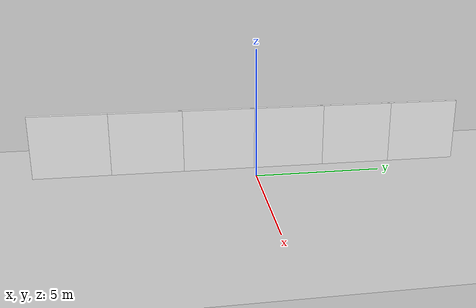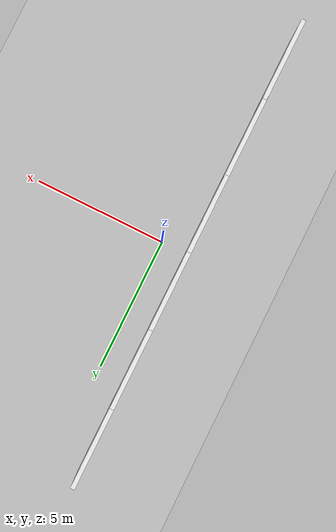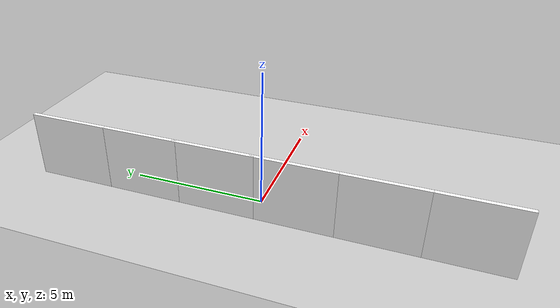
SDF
<sdf version="1.6">
 <world name="default">
  <light name="sun" type="directional">
   <pose>0 0 10 0 -0 0</pose>
   <diffuse>0.8 0.8 0.8 1</diffuse>
   <specular>0.2 0.2 0.2 1</specular>
   <attenuation>
    <range>1000</range>
    <constant>0.9</constant>
    <linear>0.01</linear>
    <quadratic>0.001</quadratic>
   </attenuation>
   <direction>-0.5 0.1 -0.9</direction>
  </light>
  <model name="ground_plane">
   <static>1</static>
   <link name="link">
    <collision name="collision">
     <geometry><plane><normal>0 0 1</normal><size>100 100</size></plane></geometry>
     <surface>
      <contact><collide_bitmask>65535</collide_bitmask></contact>
      <friction><ode><mu>100</mu><mu2>50</mu2></ode></friction>
     </surface>
    </collision>
    <visual name="visual">
     <cast_shadows>0</cast_shadows>
     <geometry><plane><normal>0 0 1</normal><size>100 100</size></plane></geometry>
     <material>
      <script><uri>file://media/materials/scripts/gazebo.material</uri><name>Gazebo/Grey</name></script>
     </material>
    </visual>
   </link>
  </model>
  <gravity>0 0 -9.8</gravity>
  <magnetic_field>6e-06 2.3e-05 -4.2e-05</magnetic_field>
  <atmosphere type="adiabatic"/>
  <physics name="default_physics" default="0" type="ode">
   <max_step_size>0.001</max_step_size>
   <real_time_factor>1</real_time_factor>
   <real_time_update_rate>1000</real_time_update_rate>
  </physics>
  <scene><ambient>0.4 0.4 0.4 1</ambient><background>0.7 0.7 0.7 1</background><shadows>1</shadows></scene>
  <audio><device>default</device></audio>
  <spherical_coordinates>
   <surface_model>EARTH_WGS84</surface_model>
   <latitude_deg>0</latitude_deg>
   <longitude_deg>0</longitude_deg>
   <elevation>0</elevation>
   <heading_deg>0</heading_deg>
  </spherical_coordinates>
  <model name="one_wall">
   <link name="Wall_0">
    <pose>0 7.125 0 0 0 -1.5708</pose>
    <inertial>
     <mass>1</mass>
     <inertia><ixx>1</ixx><ixy>0</ixy><ixz>0</ixz><iyy>1</iyy><iyz>0</iyz><izz>1</izz></inertia>
    </inertial>
    <visual name="Wall_0_Visual">
     <pose>0 0 1.25 0 -0 0</pose>
     <geometry><box><size>3 0.15 2.5</size></box></geometry>
     <material>
      <script><uri>file://media/materials/scripts/gazebo.material</uri><name>BernoulliMix/Five</name></script>
      <ambient>1 1 1 1</ambient>
      <shader type="vertex"><normal_map>__default__</normal_map></shader>
      <lighting>0</lighting>
      <emissive>0 0 0 1</emissive>
     </material>
     <meta><layer>0</layer></meta>
    </visual>
    <collision name="Wall_0_Collision">
     <pose>0 0 1.25 0 -0 0</pose>
     <geometry><box><size>3 0.15 2.5</size></box></geometry>
     <surface>
      <friction>
       <ode><mu>1</mu><mu2>1</mu2><fdir1>0 0 0</fdir1><slip1>0</slip1><slip2>0</slip2></ode>
       <torsional>
        <coefficient>1</coefficient>
        <patch_radius>0</patch_radius>
        <surface_radius>0</surface_radius>
        <use_patch_radius>1</use_patch_radius>
        <ode><slip>0</slip></ode>
       </torsional>
      </friction>
      <bounce><restitution_coefficient>0</restitution_coefficient><threshold>1e+06</threshold></bounce>
      <contact>
       <collide_without_contact>0</collide_without_contact>
       <collide_without_contact_bitmask>1</collide_without_contact_bitmask>
       <collide_bitmask>1</collide_bitmask>
       <ode>
        <soft_cfm>0</soft_cfm>
        <soft_erp>0.2</soft_erp>
        <kp>1e+13</kp>
        <kd>1</kd>
        <max_vel>0.01</max_vel>
        <min_depth>0</min_depth>
       </ode>
       <bullet>
        <split_impulse>1</split_impulse>
        <split_impulse_penetration_threshold>-0.01</split_impulse_penetration_threshold>
        <soft_cfm>0</soft_cfm>
        <soft_erp>0.2</soft_erp>
        <kp>1e+13</kp>
        <kd>1</kd>
       </bullet>
      </contact>
     </surface>
    </collision>
   </link>
   <link name="Wall_2">
    <pose>0 4.275 0 0 0 -1.5708</pose>
    <inertial>
     <mass>1</mass>
     <inertia><ixx>1</ixx><ixy>0</ixy><ixz>0</ixz><iyy>1</iyy><iyz>0</iyz><izz>1</izz></inertia>
    </inertial>
    <visual name="Wall_2_Visual">
     <pose>0 0 1.25 0 -0 0</pose>
     <geometry><box><size>3 0.15 2.5</size></box></geometry>
     <material>
      <script><uri>file://media/materials/scripts/gazebo.material</uri><name>BernoulliMix/Five</name></script>
      <ambient>1 1 1 1</ambient>
      <shader type="vertex"><normal_map>__default__</normal_map></shader>
      <lighting>0</lighting>
      <emissive>0 0 0 1</emissive>
     </material>
     <meta><layer>0</layer></meta>
    </visual>
    <collision name="Wall_2_Collision">
     <pose>0 0 1.25 0 -0 0</pose>
     <geometry><box><size>3 0.15 2.5</size></box></geometry>
     <surface>
      <friction>
       <ode><mu>1</mu><mu2>1</mu2><fdir1>0 0 0</fdir1><slip1>0</slip1><slip2>0</slip2></ode>
       <torsional>
        <coefficient>1</coefficient>
        <patch_radius>0</patch_radius>
        <surface_radius>0</surface_radius>
        <use_patch_radius>1</use_patch_radius>
        <ode><slip>0</slip></ode>
       </torsional>
      </friction>
      <bounce><restitution_coefficient>0</restitution_coefficient><threshold>1e+06</threshold></bounce>
      <contact>
       <collide_without_contact>0</collide_without_contact>
       <collide_without_contact_bitmask>1</collide_without_contact_bitmask>
       <collide_bitmask>1</collide_bitmask>
       <ode>
        <soft_cfm>0</soft_cfm>
        <soft_erp>0.2</soft_erp>
        <kp>1e+13</kp>
        <kd>1</kd>
        <max_vel>0.01</max_vel>
        <min_depth>0</min_depth>
       </ode>
       <bullet>
        <split_impulse>1</split_impulse>
        <split_impulse_penetration_threshold>-0.01</split_impulse_penetration_threshold>
        <soft_cfm>0</soft_cfm>
        <soft_erp>0.2</soft_erp>
        <kp>1e+13</kp>
        <kd>1</kd>
       </bullet>
      </contact>
     </surface>
    </collision>
   </link>
   <link name="Wall_3">
    <pose>0 1.425 0 0 0 -1.5708</pose>
    <inertial>
     <mass>1</mass>
     <inertia><ixx>1</ixx><ixy>0</ixy><ixz>0</ixz><iyy>1</iyy><iyz>0</iyz><izz>1</izz></inertia>
    </inertial>
    <visual name="Wall_3_Visual">
     <pose>0 0 1.25 0 -0 0</pose>
     <geometry><box><size>3 0.15 2.5</size></box></geometry>
     <material>
      <script><uri>file://media/materials/scripts/gazebo.material</uri><name>BernoulliMix/Five</name></script>
      <ambient>1 1 1 1</ambient>
      <shader type="vertex"><normal_map>__default__</normal_map></shader>
      <lighting>0</lighting>
      <emissive>0 0 0 1</emissive>
     </material>
     <meta><layer>0</layer></meta>
    </visual>
    <collision name="Wall_3_Collision">
     <pose>0 0 1.25 0 -0 0</pose>
     <geometry><box><size>3 0.15 2.5</size></box></geometry>
     <surface>
      <friction>
       <ode><mu>1</mu><mu2>1</mu2><fdir1>0 0 0</fdir1><slip1>0</slip1><slip2>0</slip2></ode>
       <torsional>
        <coefficient>1</coefficient>
        <patch_radius>0</patch_radius>
        <surface_radius>0</surface_radius>
        <use_patch_radius>1</use_patch_radius>
        <ode><slip>0</slip></ode>
       </torsional>
      </friction>
      <bounce><restitution_coefficient>0</restitution_coefficient><threshold>1e+06</threshold></bounce>
      <contact>
       <collide_without_contact>0</collide_without_contact>
       <collide_without_contact_bitmask>1</collide_without_contact_bitmask>
       <collide_bitmask>1</collide_bitmask>
       <ode>
        <soft_cfm>0</soft_cfm>
        <soft_erp>0.2</soft_erp>
        <kp>1e+13</kp>
        <kd>1</kd>
        <max_vel>0.01</max_vel>
        <min_depth>0</min_depth>
       </ode>
       <bullet>
        <split_impulse>1</split_impulse>
        <split_impulse_penetration_threshold>-0.01</split_impulse_penetration_threshold>
        <soft_cfm>0</soft_cfm>
        <soft_erp>0.2</soft_erp>
        <kp>1e+13</kp>
        <kd>1</kd>
       </bullet>
      </contact>
     </surface>
    </collision>
   </link>
   <link name="Wall_4">
    <pose>0 -1.425 0 0 0 -1.5708</pose>
    <inertial>
     <mass>1</mass>
     <inertia><ixx>1</ixx><ixy>0</ixy><ixz>0</ixz><iyy>1</iyy><iyz>0</iyz><izz>1</izz></inertia>
    </inertial>
    <visual name="Wall_4_Visual">
     <pose>0 0 1.25 0 -0 0</pose>
     <geometry><box><size>3 0.15 2.5</size></box></geometry>
     <material>
      <script><uri>file://media/materials/scripts/gazebo.material</uri><name>BernoulliMix/Five</name></script>
      <ambient>1 1 1 1</ambient>
      <shader type="vertex"><normal_map>__default__</normal_map></shader>
      <lighting>0</lighting>
      <emissive>0 0 0 1</emissive>
     </material>
     <meta><layer>0</layer></meta>
    </visual>
    <collision name="Wall_4_Collision">
     <pose>0 0 1.25 0 -0 0</pose>
     <geometry><box><size>3 0.15 2.5</size></box></geometry>
     <surface>
      <friction>
       <ode><mu>1</mu><mu2>1</mu2><fdir1>0 0 0</fdir1><slip1>0</slip1><slip2>0</slip2></ode>
       <torsional>
        <coefficient>1</coefficient>
        <patch_radius>0</patch_radius>
        <surface_radius>0</surface_radius>
        <use_patch_radius>1</use_patch_radius>
        <ode><slip>0</slip></ode>
       </torsional>
      </friction>
      <bounce><restitution_coefficient>0</restitution_coefficient><threshold>1e+06</threshold></bounce>
      <contact>
       <collide_without_contact>0</collide_without_contact>
       <collide_without_contact_bitmask>1</collide_without_contact_bitmask>
       <collide_bitmask>1</collide_bitmask>
       <ode>
        <soft_cfm>0</soft_cfm>
        <soft_erp>0.2</soft_erp>
        <kp>1e+13</kp>
        <kd>1</kd>
        <max_vel>0.01</max_vel>
        <min_depth>0</min_depth>
       </ode>
       <bullet>
        <split_impulse>1</split_impulse>
        <split_impulse_penetration_threshold>-0.01</split_impulse_penetration_threshold>
        <soft_cfm>0</soft_cfm>
        <soft_erp>0.2</soft_erp>
        <kp>1e+13</kp>
        <kd>1</kd>
       </bullet>
      </contact>
     </surface>
    </collision>
   </link>
   <link name="Wall_5">
    <pose>0 -4.275 0 0 0 -1.5708</pose>
    <inertial>
     <mass>1</mass>
     <inertia><ixx>1</ixx><ixy>0</ixy><ixz>0</ixz><iyy>1</iyy><iyz>0</iyz><izz>1</izz></inertia>
    </inertial>
    <visual name="Wall_5_Visual">
     <pose>0 0 1.25 0 -0 0</pose>
     <geometry><box><size>3 0.15 2.5</size></box></geometry>
     <material>
      <script><uri>file://media/materials/scripts/gazebo.material</uri><name>BernoulliMix/Five</name></script>
      <ambient>1 1 1 1</ambient>
      <shader type="vertex"><normal_map>__default__</normal_map></shader>
      <lighting>0</lighting>
      <emissive>0 0 0 1</emissive>
     </material>
     <meta><layer>0</layer></meta>
    </visual>
    <collision name="Wall_5_Collision">
     <pose>0 0 1.25 0 -0 0</pose>
     <geometry><box><size>3 0.15 2.5</size></box></geometry>
     <surface>
      <friction>
       <ode><mu>1</mu><mu2>1</mu2><fdir1>0 0 0</fdir1><slip1>0</slip1><slip2>0</slip2></ode>
       <torsional>
        <coefficient>1</coefficient>
        <patch_radius>0</patch_radius>
        <surface_radius>0</surface_radius>
        <use_patch_radius>1</use_patch_radius>
        <ode><slip>0</slip></ode>
       </torsional>
      </friction>
      <bounce><restitution_coefficient>0</restitution_coefficient><threshold>1e+06</threshold></bounce>
      <contact>
       <collide_without_contact>0</collide_without_contact>
       <collide_without_contact_bitmask>1</collide_without_contact_bitmask>
       <collide_bitmask>1</collide_bitmask>
       <ode>
        <soft_cfm>0</soft_cfm>
        <soft_erp>0.2</soft_erp>
        <kp>1e+13</kp>
        <kd>1</kd>
        <max_vel>0.01</max_vel>
        <min_depth>0</min_depth>
       </ode>
       <bullet>
        <split_impulse>1</split_impulse>
        <split_impulse_penetration_threshold>-0.01</split_impulse_penetration_threshold>
        <soft_cfm>0</soft_cfm>
        <soft_erp>0.2</soft_erp>
        <kp>1e+13</kp>
        <kd>1</kd>
       </bullet>
      </contact>
     </surface>
    </collision>
   </link>
   <link name="Wall_6">
    <pose>0 -7.125 0 0 0 -1.5708</pose>
    <inertial>
     <mass>1</mass>
     <inertia><ixx>1</ixx><ixy>0</ixy><ixz>0</ixz><iyy>1</iyy><iyz>0</iyz><izz>1</izz></inertia>
    </inertial>
    <visual name="Wall_6_Visual">
     <pose>0 0 1.25 0 -0 0</pose>
     <geometry><box><size>3 0.15 2.5</size></box></geometry>
     <material>
      <script><uri>file://media/materials/scripts/gazebo.material</uri><name>BernoulliMix/Five</name></script>
      <ambient>1 1 1 1</ambient>
      <shader type="vertex"><normal_map>__default__</normal_map></shader>
      <lighting>0</lighting>
      <emissive>0 0 0 1</emissive>
     </material>
     <meta><layer>0</layer></meta>
    </visual>
    <collision name="Wall_6_Collision">
     <pose>0 0 1.25 0 -0 0</pose>
     <geometry><box><size>3 0.15 2.5</size></box></geometry>
     <surface>
      <friction>
       <ode><mu>1</mu><mu2>1</mu2><fdir1>0 0 0</fdir1><slip1>0</slip1><slip2>0</slip2></ode>
       <torsional>
        <coefficient>1</coefficient>
        <patch_radius>0</patch_radius>
        <surface_radius>0</surface_radius>
        <use_patch_radius>1</use_patch_radius>
        <ode><slip>0</slip></ode>
       </torsional>
      </friction>
      <bounce><restitution_coefficient>0</restitution_coefficient><threshold>1e+06</threshold></bounce>
      <contact>
       <collide_without_contact>0</collide_without_contact>
       <collide_without_contact_bitmask>1</collide_without_contact_bitmask>
       <collide_bitmask>1</collide_bitmask>
       <ode>
        <soft_cfm>0</soft_cfm>
        <soft_erp>0.2</soft_erp>
        <kp>1e+13</kp>
        <kd>1</kd>
        <max_vel>0.01</max_vel>
        <min_depth>0</min_depth>
       </ode>
       <bullet>
        <split_impulse>1</split_impulse>
        <split_impulse_penetration_threshold>-0.01</split_impulse_penetration_threshold>
        <soft_cfm>0</soft_cfm>
        <soft_erp>0.2</soft_erp>
        <kp>1e+13</kp>
        <kd>1</kd>
       </bullet>
      </contact>
     </surface>
    </collision>
   </link>
   <static>1</static>
   <pose>-0.995135 -0.004076 0 0 -0 0</pose>
  </model>
 </world>
</sdf>
